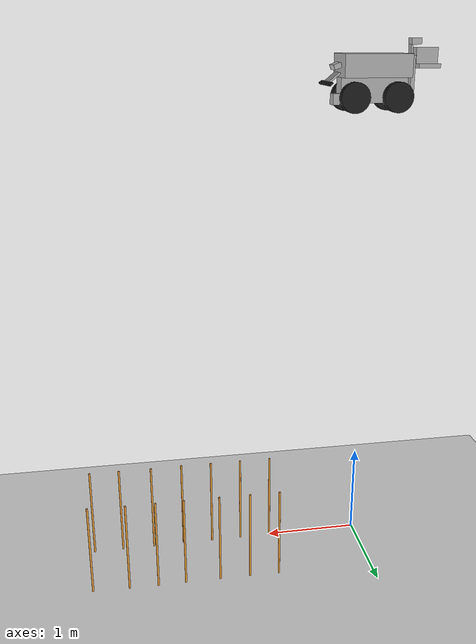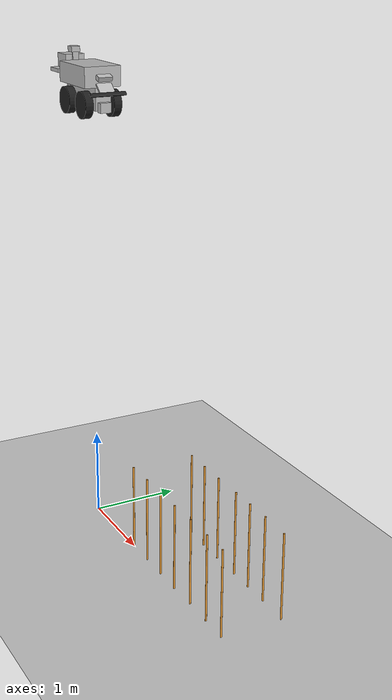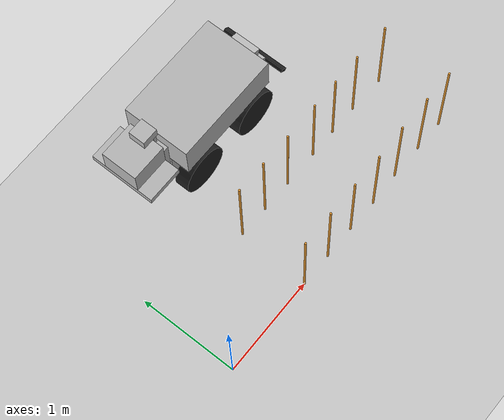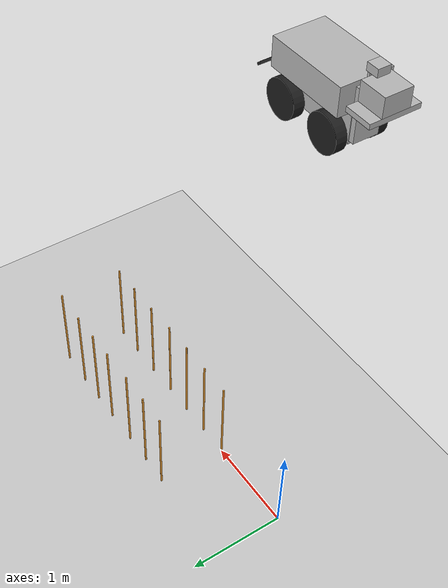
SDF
<sdf version="1.6">
 <world name="default">
  <light name="sun" type="directional">
   <pose>0 0 10 0 -0 0</pose>
   <diffuse>0.8 0.8 0.8 1</diffuse>
   <specular>0.1 0.1 0.1 1</specular>
   <attenuation>
    <range>1000</range>
    <constant>0.9</constant>
    <linear>0.01</linear>
    <quadratic>0.001</quadratic>
   </attenuation>
   <direction>-0.5 0.5 -1</direction>
  </light>
  <model name="ground_plane">
   <static>1</static>
   <link name="link">
    <collision name="collision">
     <geometry><plane><normal>0 0 1</normal><size>100 100</size></plane></geometry>
     <surface><friction><ode><mu>50</mu><mu2>50</mu2></ode></friction></surface>
    </collision>
    <visual name="visual">
     <cast_shadows>0</cast_shadows>
     <geometry><plane><normal>0 0 1</normal><size>100 100</size></plane></geometry>
     <material>
      <script><uri>file://media/materials/scripts/gazebo.material</uri><name>Gazebo/Grey</name></script>
     </material>
    </visual>
   </link>
  </model>
  <gravity>0 0 -9.8</gravity>
  <magnetic_field>6e-06 2.3e-05 -4.2e-05</magnetic_field>
  <atmosphere type="adiabatic"/>
  <physics name="default_physics" default="0" type="ode">
   <max_step_size>0.001</max_step_size>
   <real_time_factor>1</real_time_factor>
   <real_time_update_rate>1000</real_time_update_rate>
  </physics>
  <scene><ambient>0.4 0.4 0.4 1</ambient><background>0.7 0.7 0.7 1</background><shadows>1</shadows></scene>
  <spherical_coordinates>
   <surface_model>EARTH_WGS84</surface_model>
   <latitude_deg>0</latitude_deg>
   <longitude_deg>0</longitude_deg>
   <elevation>0</elevation>
   <heading_deg>0</heading_deg>
  </spherical_coordinates>
  <model name="piquet_rouge">
   <link name="link_0">
    <pose>-0.687579 0.09363 0 0 -0 0</pose>
    <inertial>
     <mass>0.00040478</mass>
     <inertia>
      <ixx>3.373e-05</ixx>
      <ixy>0</ixy>
      <ixz>0</ixz>
      <iyy>3.373e-05</iyy>
      <iyz>0</iyz>
      <izz>2e-08</izz>
     </inertia>
    </inertial>
    <visual name="visual">
     <geometry><cylinder><radius>0.0100434</radius><length>1</length></cylinder></geometry>
     <material>
      <lighting>1</lighting>
      <script><uri>file://media/materials/scripts/gazebo.material</uri><name>Gazebo/Grey</name></script>
      <ambient>1 0 0 1</ambient>
      <diffuse>0.9 0.6 0.2 1</diffuse>
      <specular>0.11 0.01 0.01 1</specular>
      <emissive>0 0 0 1</emissive>
      <shader type="vertex"><normal_map>__default__</normal_map></shader>
     </material>
    </visual>
    <collision name="collision">
     <geometry><cylinder><radius>0.010043</radius><length>1</length></cylinder></geometry>
     <surface>
      <friction>
       <ode><mu>1</mu><mu2>1</mu2><fdir1>0 0 0</fdir1><slip1>0</slip1><slip2>0</slip2></ode>
       <torsional>
        <coefficient>1</coefficient>
        <patch_radius>0</patch_radius>
        <surface_radius>0</surface_radius>
        <use_patch_radius>1</use_patch_radius>
        <ode><slip>0</slip></ode>
       </torsional>
      </friction>
      <bounce><restitution_coefficient>0</restitution_coefficient><threshold>1e+06</threshold></bounce>
      <contact>
       <collide_without_contact>0</collide_without_contact>
       <collide_without_contact_bitmask>1</collide_without_contact_bitmask>
       <collide_bitmask>1</collide_bitmask>
       <ode>
        <soft_cfm>0</soft_cfm>
        <soft_erp>0.2</soft_erp>
        <kp>1e+13</kp>
        <kd>1</kd>
        <max_vel>0.01</max_vel>
        <min_depth>0</min_depth>
       </ode>
       <bullet>
        <split_impulse>1</split_impulse>
        <split_impulse_penetration_threshold>-0.01</split_impulse_penetration_threshold>
        <soft_cfm>0</soft_cfm>
        <soft_erp>0.2</soft_erp>
        <kp>1e+13</kp>
        <kd>1</kd>
       </bullet>
      </contact>
     </surface>
    </collision>
   </link>
   <static>0</static>
   <pose>1.68708 -0.094016 0.499987 -6e-06 7e-06 -0.001095</pose>
  </model>
  <model name="piquet_rouge_clone">
   <link name="link_0">
    <pose>-0.687579 0.09363 0 0 -0 0</pose>
    <inertial>
     <mass>0.00040478</mass>
     <inertia>
      <ixx>3.373e-05</ixx>
      <ixy>0</ixy>
      <ixz>0</ixz>
      <iyy>3.373e-05</iyy>
      <iyz>0</iyz>
      <izz>2e-08</izz>
     </inertia>
    </inertial>
    <visual name="visual">
     <geometry><cylinder><radius>0.0100434</radius><length>1</length></cylinder></geometry>
     <material>
      <lighting>1</lighting>
      <script><uri>file://media/materials/scripts/gazebo.material</uri><name>Gazebo/Grey</name></script>
      <ambient>1 0 0 1</ambient>
      <diffuse>0.9 0.6 0.2 1</diffuse>
      <specular>0.11 0.01 0.01 1</specular>
      <emissive>0 0 0 1</emissive>
      <shader type="vertex"><normal_map>__default__</normal_map></shader>
     </material>
    </visual>
    <collision name="collision">
     <geometry><cylinder><radius>0.010043</radius><length>1</length></cylinder></geometry>
     <surface>
      <friction>
       <ode><mu>1</mu><mu2>1</mu2><fdir1>0 0 0</fdir1><slip1>0</slip1><slip2>0</slip2></ode>
       <torsional>
        <coefficient>1</coefficient>
        <patch_radius>0</patch_radius>
        <surface_radius>0</surface_radius>
        <use_patch_radius>1</use_patch_radius>
        <ode><slip>0</slip></ode>
       </torsional>
      </friction>
      <bounce><restitution_coefficient>0</restitution_coefficient><threshold>1e+06</threshold></bounce>
      <contact>
       <collide_without_contact>0</collide_without_contact>
       <collide_without_contact_bitmask>1</collide_without_contact_bitmask>
       <collide_bitmask>1</collide_bitmask>
       <ode>
        <soft_cfm>0</soft_cfm>
        <soft_erp>0.2</soft_erp>
        <kp>1e+13</kp>
        <kd>1</kd>
        <max_vel>0.01</max_vel>
        <min_depth>0</min_depth>
       </ode>
       <bullet>
        <split_impulse>1</split_impulse>
        <split_impulse_penetration_threshold>-0.01</split_impulse_penetration_threshold>
        <soft_cfm>0</soft_cfm>
        <soft_erp>0.2</soft_erp>
        <kp>1e+13</kp>
        <kd>1</kd>
       </bullet>
      </contact>
     </surface>
    </collision>
   </link>
   <static>0</static>
   <pose>2.72513 0.625258 0.499969 -1e-06 3.2e-05 0.001939</pose>
  </model>
  <model name="piquet_rouge_clone_0">
   <link name="link_0">
    <pose>-0.687579 0.09363 0 0 -0 0</pose>
    <inertial>
     <mass>0.00040478</mass>
     <inertia>
      <ixx>3.373e-05</ixx>
      <ixy>0</ixy>
      <ixz>0</ixz>
      <iyy>3.373e-05</iyy>
      <iyz>0</iyz>
      <izz>2e-08</izz>
     </inertia>
    </inertial>
    <visual name="visual">
     <geometry><cylinder><radius>0.0100434</radius><length>1</length></cylinder></geometry>
     <material>
      <lighting>1</lighting>
      <script><uri>file://media/materials/scripts/gazebo.material</uri><name>Gazebo/Grey</name></script>
      <ambient>1 0 0 1</ambient>
      <diffuse>0.9 0.6 0.2 1</diffuse>
      <specular>0.11 0.01 0.01 1</specular>
      <emissive>0 0 0 1</emissive>
      <shader type="vertex"><normal_map>__default__</normal_map></shader>
     </material>
    </visual>
    <collision name="collision">
     <geometry><cylinder><radius>0.010043</radius><length>1</length></cylinder></geometry>
     <surface>
      <friction>
       <ode><mu>1</mu><mu2>1</mu2><fdir1>0 0 0</fdir1><slip1>0</slip1><slip2>0</slip2></ode>
       <torsional>
        <coefficient>1</coefficient>
        <patch_radius>0</patch_radius>
        <surface_radius>0</surface_radius>
        <use_patch_radius>1</use_patch_radius>
        <ode><slip>0</slip></ode>
       </torsional>
      </friction>
      <bounce><restitution_coefficient>0</restitution_coefficient><threshold>1e+06</threshold></bounce>
      <contact>
       <collide_without_contact>0</collide_without_contact>
       <collide_without_contact_bitmask>1</collide_without_contact_bitmask>
       <collide_bitmask>1</collide_bitmask>
       <ode>
        <soft_cfm>0</soft_cfm>
        <soft_erp>0.2</soft_erp>
        <kp>1e+13</kp>
        <kd>1</kd>
        <max_vel>0.01</max_vel>
        <min_depth>0</min_depth>
       </ode>
       <bullet>
        <split_impulse>1</split_impulse>
        <split_impulse_penetration_threshold>-0.01</split_impulse_penetration_threshold>
        <soft_cfm>0</soft_cfm>
        <soft_erp>0.2</soft_erp>
        <kp>1e+13</kp>
        <kd>1</kd>
       </bullet>
      </contact>
     </surface>
    </collision>
   </link>
   <static>0</static>
   <pose>2.35372 0.623435 0.500004 -4e-06 -7e-06 0.000661</pose>
  </model>
  <model name="piquet_rouge_clone_1">
   <link name="link_0">
    <pose>-0.687579 0.09363 0 0 -0 0</pose>
    <inertial>
     <mass>0.00040478</mass>
     <inertia>
      <ixx>3.373e-05</ixx>
      <ixy>0</ixy>
      <ixz>0</ixz>
      <iyy>3.373e-05</iyy>
      <iyz>0</iyz>
      <izz>2e-08</izz>
     </inertia>
    </inertial>
    <visual name="visual">
     <geometry><cylinder><radius>0.0100434</radius><length>1</length></cylinder></geometry>
     <material>
      <lighting>1</lighting>
      <script><uri>file://media/materials/scripts/gazebo.material</uri><name>Gazebo/Grey</name></script>
      <ambient>1 0 0 1</ambient>
      <diffuse>0.9 0.6 0.2 1</diffuse>
      <specular>0.11 0.01 0.01 1</specular>
      <emissive>0 0 0 1</emissive>
      <shader type="vertex"><normal_map>__default__</normal_map></shader>
     </material>
    </visual>
    <collision name="collision">
     <geometry><cylinder><radius>0.010043</radius><length>1</length></cylinder></geometry>
     <surface>
      <friction>
       <ode><mu>1</mu><mu2>1</mu2><fdir1>0 0 0</fdir1><slip1>0</slip1><slip2>0</slip2></ode>
       <torsional>
        <coefficient>1</coefficient>
        <patch_radius>0</patch_radius>
        <surface_radius>0</surface_radius>
        <use_patch_radius>1</use_patch_radius>
        <ode><slip>0</slip></ode>
       </torsional>
      </friction>
      <bounce><restitution_coefficient>0</restitution_coefficient><threshold>1e+06</threshold></bounce>
      <contact>
       <collide_without_contact>0</collide_without_contact>
       <collide_without_contact_bitmask>1</collide_without_contact_bitmask>
       <collide_bitmask>1</collide_bitmask>
       <ode>
        <soft_cfm>0</soft_cfm>
        <soft_erp>0.2</soft_erp>
        <kp>1e+13</kp>
        <kd>1</kd>
        <max_vel>0.01</max_vel>
        <min_depth>0</min_depth>
       </ode>
       <bullet>
        <split_impulse>1</split_impulse>
        <split_impulse_penetration_threshold>-0.01</split_impulse_penetration_threshold>
        <soft_cfm>0</soft_cfm>
        <soft_erp>0.2</soft_erp>
        <kp>1e+13</kp>
        <kd>1</kd>
       </bullet>
      </contact>
     </surface>
    </collision>
   </link>
   <static>0</static>
   <pose>2.68534 -0.097739 0.499993 -2e-06 1.1e-05 0.001161</pose>
  </model>
  <model name="piquet_rouge_clone_2">
   <link name="link_0">
    <pose>-0.687579 0.09363 0 0 -0 0</pose>
    <inertial>
     <mass>0.00040478</mass>
     <inertia>
      <ixx>3.373e-05</ixx>
      <ixy>0</ixy>
      <ixz>0</ixz>
      <iyy>3.373e-05</iyy>
      <iyz>0</iyz>
      <izz>2e-08</izz>
     </inertia>
    </inertial>
    <visual name="visual">
     <geometry><cylinder><radius>0.0100434</radius><length>1</length></cylinder></geometry>
     <material>
      <lighting>1</lighting>
      <script><uri>file://media/materials/scripts/gazebo.material</uri><name>Gazebo/Grey</name></script>
      <ambient>1 0 0 1</ambient>
      <diffuse>0.9 0.6 0.2 1</diffuse>
      <specular>0.11 0.01 0.01 1</specular>
      <emissive>0 0 0 1</emissive>
      <shader type="vertex"><normal_map>__default__</normal_map></shader>
     </material>
    </visual>
    <collision name="collision">
     <geometry><cylinder><radius>0.010043</radius><length>1</length></cylinder></geometry>
     <surface>
      <friction>
       <ode><mu>1</mu><mu2>1</mu2><fdir1>0 0 0</fdir1><slip1>0</slip1><slip2>0</slip2></ode>
       <torsional>
        <coefficient>1</coefficient>
        <patch_radius>0</patch_radius>
        <surface_radius>0</surface_radius>
        <use_patch_radius>1</use_patch_radius>
        <ode><slip>0</slip></ode>
       </torsional>
      </friction>
      <bounce><restitution_coefficient>0</restitution_coefficient><threshold>1e+06</threshold></bounce>
      <contact>
       <collide_without_contact>0</collide_without_contact>
       <collide_without_contact_bitmask>1</collide_without_contact_bitmask>
       <collide_bitmask>1</collide_bitmask>
       <ode>
        <soft_cfm>0</soft_cfm>
        <soft_erp>0.2</soft_erp>
        <kp>1e+13</kp>
        <kd>1</kd>
        <max_vel>0.01</max_vel>
        <min_depth>0</min_depth>
       </ode>
       <bullet>
        <split_impulse>1</split_impulse>
        <split_impulse_penetration_threshold>-0.01</split_impulse_penetration_threshold>
        <soft_cfm>0</soft_cfm>
        <soft_erp>0.2</soft_erp>
        <kp>1e+13</kp>
        <kd>1</kd>
       </bullet>
      </contact>
     </surface>
    </collision>
   </link>
   <static>0</static>
   <pose>3.68939 -0.09362 0.500025 -8e-06 -5e-05 0.001795</pose>
  </model>
  <model name="piquet_rouge_clone_3">
   <link name="link_0">
    <pose>-0.687579 0.09363 0 0 -0 0</pose>
    <inertial>
     <mass>0.00040478</mass>
     <inertia>
      <ixx>3.373e-05</ixx>
      <ixy>0</ixy>
      <ixz>0</ixz>
      <iyy>3.373e-05</iyy>
      <iyz>0</iyz>
      <izz>2e-08</izz>
     </inertia>
    </inertial>
    <visual name="visual">
     <geometry><cylinder><radius>0.0100434</radius><length>1</length></cylinder></geometry>
     <material>
      <lighting>1</lighting>
      <script><uri>file://media/materials/scripts/gazebo.material</uri><name>Gazebo/Grey</name></script>
      <ambient>1 0 0 1</ambient>
      <diffuse>0.9 0.6 0.2 1</diffuse>
      <specular>0.11 0.01 0.01 1</specular>
      <emissive>0 0 0 1</emissive>
      <shader type="vertex"><normal_map>__default__</normal_map></shader>
     </material>
    </visual>
    <collision name="collision">
     <geometry><cylinder><radius>0.010043</radius><length>1</length></cylinder></geometry>
     <surface>
      <friction>
       <ode><mu>1</mu><mu2>1</mu2><fdir1>0 0 0</fdir1><slip1>0</slip1><slip2>0</slip2></ode>
       <torsional>
        <coefficient>1</coefficient>
        <patch_radius>0</patch_radius>
        <surface_radius>0</surface_radius>
        <use_patch_radius>1</use_patch_radius>
        <ode><slip>0</slip></ode>
       </torsional>
      </friction>
      <bounce><restitution_coefficient>0</restitution_coefficient><threshold>1e+06</threshold></bounce>
      <contact>
       <collide_without_contact>0</collide_without_contact>
       <collide_without_contact_bitmask>1</collide_without_contact_bitmask>
       <collide_bitmask>1</collide_bitmask>
       <ode>
        <soft_cfm>0</soft_cfm>
        <soft_erp>0.2</soft_erp>
        <kp>1e+13</kp>
        <kd>1</kd>
        <max_vel>0.01</max_vel>
        <min_depth>0</min_depth>
       </ode>
       <bullet>
        <split_impulse>1</split_impulse>
        <split_impulse_penetration_threshold>-0.01</split_impulse_penetration_threshold>
        <soft_cfm>0</soft_cfm>
        <soft_erp>0.2</soft_erp>
        <kp>1e+13</kp>
        <kd>1</kd>
       </bullet>
      </contact>
     </surface>
    </collision>
   </link>
   <static>0</static>
   <pose>3.37309 -0.092543 0.500013 -1.1e-05 -3e-05 5e-06</pose>
  </model>
  <model name="piquet_rouge_clone_4">
   <link name="link_0">
    <pose>-0.687579 0.09363 0 0 -0 0</pose>
    <inertial>
     <mass>0.00040478</mass>
     <inertia>
      <ixx>3.373e-05</ixx>
      <ixy>0</ixy>
      <ixz>0</ixz>
      <iyy>3.373e-05</iyy>
      <iyz>0</iyz>
      <izz>2e-08</izz>
     </inertia>
    </inertial>
    <visual name="visual">
     <geometry><cylinder><radius>0.0100434</radius><length>1</length></cylinder></geometry>
     <material>
      <lighting>1</lighting>
      <script><uri>file://media/materials/scripts/gazebo.material</uri><name>Gazebo/Grey</name></script>
      <ambient>1 0 0 1</ambient>
      <diffuse>0.9 0.6 0.2 1</diffuse>
      <specular>0.11 0.01 0.01 1</specular>
      <emissive>0 0 0 1</emissive>
      <shader type="vertex"><normal_map>__default__</normal_map></shader>
     </material>
    </visual>
    <collision name="collision">
     <geometry><cylinder><radius>0.010043</radius><length>1</length></cylinder></geometry>
     <surface>
      <friction>
       <ode><mu>1</mu><mu2>1</mu2><fdir1>0 0 0</fdir1><slip1>0</slip1><slip2>0</slip2></ode>
       <torsional>
        <coefficient>1</coefficient>
        <patch_radius>0</patch_radius>
        <surface_radius>0</surface_radius>
        <use_patch_radius>1</use_patch_radius>
        <ode><slip>0</slip></ode>
       </torsional>
      </friction>
      <bounce><restitution_coefficient>0</restitution_coefficient><threshold>1e+06</threshold></bounce>
      <contact>
       <collide_without_contact>0</collide_without_contact>
       <collide_without_contact_bitmask>1</collide_without_contact_bitmask>
       <collide_bitmask>1</collide_bitmask>
       <ode>
        <soft_cfm>0</soft_cfm>
        <soft_erp>0.2</soft_erp>
        <kp>1e+13</kp>
        <kd>1</kd>
        <max_vel>0.01</max_vel>
        <min_depth>0</min_depth>
       </ode>
       <bullet>
        <split_impulse>1</split_impulse>
        <split_impulse_penetration_threshold>-0.01</split_impulse_penetration_threshold>
        <soft_cfm>0</soft_cfm>
        <soft_erp>0.2</soft_erp>
        <kp>1e+13</kp>
        <kd>1</kd>
       </bullet>
      </contact>
     </surface>
    </collision>
   </link>
   <static>0</static>
   <pose>2.0308 0.627905 0.500006 -7e-06 -9e-06 0.000936</pose>
  </model>
  <model name="piquet_rouge_clone_5">
   <link name="link_0">
    <pose>-0.687579 0.09363 0 0 -0 0</pose>
    <inertial>
     <mass>0.00040478</mass>
     <inertia>
      <ixx>3.373e-05</ixx>
      <ixy>0</ixy>
      <ixz>0</ixz>
      <iyy>3.373e-05</iyy>
      <iyz>0</iyz>
      <izz>2e-08</izz>
     </inertia>
    </inertial>
    <visual name="visual">
     <geometry><cylinder><radius>0.0100434</radius><length>1</length></cylinder></geometry>
     <material>
      <lighting>1</lighting>
      <script><uri>file://media/materials/scripts/gazebo.material</uri><name>Gazebo/Grey</name></script>
      <ambient>1 0 0 1</ambient>
      <diffuse>0.9 0.6 0.2 1</diffuse>
      <specular>0.11 0.01 0.01 1</specular>
      <emissive>0 0 0 1</emissive>
      <shader type="vertex"><normal_map>__default__</normal_map></shader>
     </material>
    </visual>
    <collision name="collision">
     <geometry><cylinder><radius>0.010043</radius><length>1</length></cylinder></geometry>
     <surface>
      <friction>
       <ode><mu>1</mu><mu2>1</mu2><fdir1>0 0 0</fdir1><slip1>0</slip1><slip2>0</slip2></ode>
       <torsional>
        <coefficient>1</coefficient>
        <patch_radius>0</patch_radius>
        <surface_radius>0</surface_radius>
        <use_patch_radius>1</use_patch_radius>
        <ode><slip>0</slip></ode>
       </torsional>
      </friction>
      <bounce><restitution_coefficient>0</restitution_coefficient><threshold>1e+06</threshold></bounce>
      <contact>
       <collide_without_contact>0</collide_without_contact>
       <collide_without_contact_bitmask>1</collide_without_contact_bitmask>
       <collide_bitmask>1</collide_bitmask>
       <ode>
        <soft_cfm>0</soft_cfm>
        <soft_erp>0.2</soft_erp>
        <kp>1e+13</kp>
        <kd>1</kd>
        <max_vel>0.01</max_vel>
        <min_depth>0</min_depth>
       </ode>
       <bullet>
        <split_impulse>1</split_impulse>
        <split_impulse_penetration_threshold>-0.01</split_impulse_penetration_threshold>
        <soft_cfm>0</soft_cfm>
        <soft_erp>0.2</soft_erp>
        <kp>1e+13</kp>
        <kd>1</kd>
       </bullet>
      </contact>
     </surface>
    </collision>
   </link>
   <static>0</static>
   <pose>3.02327 -0.087917 0.499967 -8e-06 3.6e-05 0.001081</pose>
  </model>
  <model name="piquet_rouge_clone_6">
   <link name="link_0">
    <pose>-0.687579 0.09363 0 0 -0 0</pose>
    <inertial>
     <mass>0.00040478</mass>
     <inertia>
      <ixx>3.373e-05</ixx>
      <ixy>0</ixy>
      <ixz>0</ixz>
      <iyy>3.373e-05</iyy>
      <iyz>0</iyz>
      <izz>2e-08</izz>
     </inertia>
    </inertial>
    <visual name="visual">
     <geometry><cylinder><radius>0.0100434</radius><length>1</length></cylinder></geometry>
     <material>
      <lighting>1</lighting>
      <script><uri>file://media/materials/scripts/gazebo.material</uri><name>Gazebo/Grey</name></script>
      <ambient>1 0 0 1</ambient>
      <diffuse>0.9 0.6 0.2 1</diffuse>
      <specular>0.11 0.01 0.01 1</specular>
      <emissive>0 0 0 1</emissive>
      <shader type="vertex"><normal_map>__default__</normal_map></shader>
     </material>
    </visual>
    <collision name="collision">
     <geometry><cylinder><radius>0.010043</radius><length>1</length></cylinder></geometry>
     <surface>
      <friction>
       <ode><mu>1</mu><mu2>1</mu2><fdir1>0 0 0</fdir1><slip1>0</slip1><slip2>0</slip2></ode>
       <torsional>
        <coefficient>1</coefficient>
        <patch_radius>0</patch_radius>
        <surface_radius>0</surface_radius>
        <use_patch_radius>1</use_patch_radius>
        <ode><slip>0</slip></ode>
       </torsional>
      </friction>
      <bounce><restitution_coefficient>0</restitution_coefficient><threshold>1e+06</threshold></bounce>
      <contact>
       <collide_without_contact>0</collide_without_contact>
       <collide_without_contact_bitmask>1</collide_without_contact_bitmask>
       <collide_bitmask>1</collide_bitmask>
       <ode>
        <soft_cfm>0</soft_cfm>
        <soft_erp>0.2</soft_erp>
        <kp>1e+13</kp>
        <kd>1</kd>
        <max_vel>0.01</max_vel>
        <min_depth>0</min_depth>
       </ode>
       <bullet>
        <split_impulse>1</split_impulse>
        <split_impulse_penetration_threshold>-0.01</split_impulse_penetration_threshold>
        <soft_cfm>0</soft_cfm>
        <soft_erp>0.2</soft_erp>
        <kp>1e+13</kp>
        <kd>1</kd>
       </bullet>
      </contact>
     </surface>
    </collision>
   </link>
   <static>0</static>
   <pose>2.02494 -0.093062 0.499984 0 1e-05 -0.00019</pose>
  </model>
  <model name="piquet_rouge_clone_7">
   <link name="link_0">
    <pose>-0.687579 0.09363 0 0 -0 0</pose>
    <inertial>
     <mass>0.00040478</mass>
     <inertia>
      <ixx>3.373e-05</ixx>
      <ixy>0</ixy>
      <ixz>0</ixz>
      <iyy>3.373e-05</iyy>
      <iyz>0</iyz>
      <izz>2e-08</izz>
     </inertia>
    </inertial>
    <visual name="visual">
     <geometry><cylinder><radius>0.0100434</radius><length>1</length></cylinder></geometry>
     <material>
      <lighting>1</lighting>
      <script><uri>file://media/materials/scripts/gazebo.material</uri><name>Gazebo/Grey</name></script>
      <ambient>1 0 0 1</ambient>
      <diffuse>0.9 0.6 0.2 1</diffuse>
      <specular>0.11 0.01 0.01 1</specular>
      <emissive>0 0 0 1</emissive>
      <shader type="vertex"><normal_map>__default__</normal_map></shader>
     </material>
    </visual>
    <collision name="collision">
     <geometry><cylinder><radius>0.010043</radius><length>1</length></cylinder></geometry>
     <surface>
      <friction>
       <ode><mu>1</mu><mu2>1</mu2><fdir1>0 0 0</fdir1><slip1>0</slip1><slip2>0</slip2></ode>
       <torsional>
        <coefficient>1</coefficient>
        <patch_radius>0</patch_radius>
        <surface_radius>0</surface_radius>
        <use_patch_radius>1</use_patch_radius>
        <ode><slip>0</slip></ode>
       </torsional>
      </friction>
      <bounce><restitution_coefficient>0</restitution_coefficient><threshold>1e+06</threshold></bounce>
      <contact>
       <collide_without_contact>0</collide_without_contact>
       <collide_without_contact_bitmask>1</collide_without_contact_bitmask>
       <collide_bitmask>1</collide_bitmask>
       <ode>
        <soft_cfm>0</soft_cfm>
        <soft_erp>0.2</soft_erp>
        <kp>1e+13</kp>
        <kd>1</kd>
        <max_vel>0.01</max_vel>
        <min_depth>0</min_depth>
       </ode>
       <bullet>
        <split_impulse>1</split_impulse>
        <split_impulse_penetration_threshold>-0.01</split_impulse_penetration_threshold>
        <soft_cfm>0</soft_cfm>
        <soft_erp>0.2</soft_erp>
        <kp>1e+13</kp>
        <kd>1</kd>
       </bullet>
      </contact>
     </surface>
    </collision>
   </link>
   <static>0</static>
   <pose>1.7168 0.635046 0.499968 -1e-06 3.2e-05 0.003289</pose>
  </model>
  <model name="piquet_rouge_clone_8">
   <link name="link_0">
    <pose>-0.687579 0.09363 0 0 -0 0</pose>
    <inertial>
     <mass>0.00040478</mass>
     <inertia>
      <ixx>3.373e-05</ixx>
      <ixy>0</ixy>
      <ixz>0</ixz>
      <iyy>3.373e-05</iyy>
      <iyz>0</iyz>
      <izz>2e-08</izz>
     </inertia>
    </inertial>
    <visual name="visual">
     <geometry><cylinder><radius>0.0100434</radius><length>1</length></cylinder></geometry>
     <material>
      <lighting>1</lighting>
      <script><uri>file://media/materials/scripts/gazebo.material</uri><name>Gazebo/Grey</name></script>
      <ambient>1 0 0 1</ambient>
      <diffuse>0.9 0.6 0.2 1</diffuse>
      <specular>0.11 0.01 0.01 1</specular>
      <emissive>0 0 0 1</emissive>
      <shader type="vertex"><normal_map>__default__</normal_map></shader>
     </material>
    </visual>
    <collision name="collision">
     <geometry><cylinder><radius>0.010043</radius><length>1</length></cylinder></geometry>
     <surface>
      <friction>
       <ode><mu>1</mu><mu2>1</mu2><fdir1>0 0 0</fdir1><slip1>0</slip1><slip2>0</slip2></ode>
       <torsional>
        <coefficient>1</coefficient>
        <patch_radius>0</patch_radius>
        <surface_radius>0</surface_radius>
        <use_patch_radius>1</use_patch_radius>
        <ode><slip>0</slip></ode>
       </torsional>
      </friction>
      <bounce><restitution_coefficient>0</restitution_coefficient><threshold>1e+06</threshold></bounce>
      <contact>
       <collide_without_contact>0</collide_without_contact>
       <collide_without_contact_bitmask>1</collide_without_contact_bitmask>
       <collide_bitmask>1</collide_bitmask>
       <ode>
        <soft_cfm>0</soft_cfm>
        <soft_erp>0.2</soft_erp>
        <kp>1e+13</kp>
        <kd>1</kd>
        <max_vel>0.01</max_vel>
        <min_depth>0</min_depth>
       </ode>
       <bullet>
        <split_impulse>1</split_impulse>
        <split_impulse_penetration_threshold>-0.01</split_impulse_penetration_threshold>
        <soft_cfm>0</soft_cfm>
        <soft_erp>0.2</soft_erp>
        <kp>1e+13</kp>
        <kd>1</kd>
       </bullet>
      </contact>
     </surface>
    </collision>
   </link>
   <static>0</static>
   <pose>2.35561 -0.093439 0.499958 -1.5e-05 4.8e-05 0.000487</pose>
  </model>
  <model name="piquet_rouge_clone_clone">
   <link name="link_0">
    <pose>-0.687579 0.09363 0 0 -0 0</pose>
    <inertial>
     <mass>0.00040478</mass>
     <inertia>
      <ixx>3.373e-05</ixx>
      <ixy>0</ixy>
      <ixz>0</ixz>
      <iyy>3.373e-05</iyy>
      <iyz>0</iyz>
      <izz>2e-08</izz>
     </inertia>
    </inertial>
    <visual name="visual">
     <geometry><cylinder><radius>0.0100434</radius><length>1</length></cylinder></geometry>
     <material>
      <lighting>1</lighting>
      <script><uri>file://media/materials/scripts/gazebo.material</uri><name>Gazebo/Grey</name></script>
      <ambient>1 0 0 1</ambient>
      <diffuse>0.9 0.6 0.2 1</diffuse>
      <specular>0.11 0.01 0.01 1</specular>
      <emissive>0 0 0 1</emissive>
      <shader type="vertex"><normal_map>__default__</normal_map></shader>
     </material>
    </visual>
    <collision name="collision">
     <geometry><cylinder><radius>0.010043</radius><length>1</length></cylinder></geometry>
     <surface>
      <friction>
       <ode><mu>1</mu><mu2>1</mu2><fdir1>0 0 0</fdir1><slip1>0</slip1><slip2>0</slip2></ode>
       <torsional>
        <coefficient>1</coefficient>
        <patch_radius>0</patch_radius>
        <surface_radius>0</surface_radius>
        <use_patch_radius>1</use_patch_radius>
        <ode><slip>0</slip></ode>
       </torsional>
      </friction>
      <bounce><restitution_coefficient>0</restitution_coefficient><threshold>1e+06</threshold></bounce>
      <contact>
       <collide_without_contact>0</collide_without_contact>
       <collide_without_contact_bitmask>1</collide_without_contact_bitmask>
       <collide_bitmask>1</collide_bitmask>
       <ode>
        <soft_cfm>0</soft_cfm>
        <soft_erp>0.2</soft_erp>
        <kp>1e+13</kp>
        <kd>1</kd>
        <max_vel>0.01</max_vel>
        <min_depth>0</min_depth>
       </ode>
       <bullet>
        <split_impulse>1</split_impulse>
        <split_impulse_penetration_threshold>-0.01</split_impulse_penetration_threshold>
        <soft_cfm>0</soft_cfm>
        <soft_erp>0.2</soft_erp>
        <kp>1e+13</kp>
        <kd>1</kd>
       </bullet>
      </contact>
     </surface>
    </collision>
   </link>
   <static>0</static>
   <pose>3.0171 0.623457 0.499972 1e-06 2.6e-05 -8.2e-05</pose>
  </model>
  <model name="piquet_rouge_clone_clone_0">
   <link name="link_0">
    <pose>-0.687579 0.09363 0 0 -0 0</pose>
    <inertial>
     <mass>0.00040478</mass>
     <inertia>
      <ixx>3.373e-05</ixx>
      <ixy>0</ixy>
      <ixz>0</ixz>
      <iyy>3.373e-05</iyy>
      <iyz>0</iyz>
      <izz>2e-08</izz>
     </inertia>
    </inertial>
    <visual name="visual">
     <geometry><cylinder><radius>0.0100434</radius><length>1</length></cylinder></geometry>
     <material>
      <lighting>1</lighting>
      <script><uri>file://media/materials/scripts/gazebo.material</uri><name>Gazebo/Grey</name></script>
      <ambient>1 0 0 1</ambient>
      <diffuse>0.9 0.6 0.2 1</diffuse>
      <specular>0.11 0.01 0.01 1</specular>
      <emissive>0 0 0 1</emissive>
      <shader type="vertex"><normal_map>__default__</normal_map></shader>
     </material>
    </visual>
    <collision name="collision">
     <geometry><cylinder><radius>0.010043</radius><length>1</length></cylinder></geometry>
     <surface>
      <friction>
       <ode><mu>1</mu><mu2>1</mu2><fdir1>0 0 0</fdir1><slip1>0</slip1><slip2>0</slip2></ode>
       <torsional>
        <coefficient>1</coefficient>
        <patch_radius>0</patch_radius>
        <surface_radius>0</surface_radius>
        <use_patch_radius>1</use_patch_radius>
        <ode><slip>0</slip></ode>
       </torsional>
      </friction>
      <bounce><restitution_coefficient>0</restitution_coefficient><threshold>1e+06</threshold></bounce>
      <contact>
       <collide_without_contact>0</collide_without_contact>
       <collide_without_contact_bitmask>1</collide_without_contact_bitmask>
       <collide_bitmask>1</collide_bitmask>
       <ode>
        <soft_cfm>0</soft_cfm>
        <soft_erp>0.2</soft_erp>
        <kp>1e+13</kp>
        <kd>1</kd>
        <max_vel>0.01</max_vel>
        <min_depth>0</min_depth>
       </ode>
       <bullet>
        <split_impulse>1</split_impulse>
        <split_impulse_penetration_threshold>-0.01</split_impulse_penetration_threshold>
        <soft_cfm>0</soft_cfm>
        <soft_erp>0.2</soft_erp>
        <kp>1e+13</kp>
        <kd>1</kd>
       </bullet>
      </contact>
     </surface>
    </collision>
   </link>
   <static>0</static>
   <pose>3.32107 0.622961 0.50001 1e-06 -1.5e-05 0.000431</pose>
  </model>
  <model name="piquet_rouge_clone_clone_1">
   <link name="link_0">
    <pose>-0.687579 0.09363 0 0 -0 0</pose>
    <inertial>
     <mass>0.00040478</mass>
     <inertia>
      <ixx>3.373e-05</ixx>
      <ixy>0</ixy>
      <ixz>0</ixz>
      <iyy>3.373e-05</iyy>
      <iyz>0</iyz>
      <izz>2e-08</izz>
     </inertia>
    </inertial>
    <visual name="visual">
     <geometry><cylinder><radius>0.0100434</radius><length>1</length></cylinder></geometry>
     <material>
      <lighting>1</lighting>
      <script><uri>file://media/materials/scripts/gazebo.material</uri><name>Gazebo/Grey</name></script>
      <ambient>1 0 0 1</ambient>
      <diffuse>0.9 0.6 0.2 1</diffuse>
      <specular>0.11 0.01 0.01 1</specular>
      <emissive>0 0 0 1</emissive>
      <shader type="vertex"><normal_map>__default__</normal_map></shader>
     </material>
    </visual>
    <collision name="collision">
     <geometry><cylinder><radius>0.010043</radius><length>1</length></cylinder></geometry>
     <surface>
      <friction>
       <ode><mu>1</mu><mu2>1</mu2><fdir1>0 0 0</fdir1><slip1>0</slip1><slip2>0</slip2></ode>
       <torsional>
        <coefficient>1</coefficient>
        <patch_radius>0</patch_radius>
        <surface_radius>0</surface_radius>
        <use_patch_radius>1</use_patch_radius>
        <ode><slip>0</slip></ode>
       </torsional>
      </friction>
      <bounce><restitution_coefficient>0</restitution_coefficient><threshold>1e+06</threshold></bounce>
      <contact>
       <collide_without_contact>0</collide_without_contact>
       <collide_without_contact_bitmask>1</collide_without_contact_bitmask>
       <collide_bitmask>1</collide_bitmask>
       <ode>
        <soft_cfm>0</soft_cfm>
        <soft_erp>0.2</soft_erp>
        <kp>1e+13</kp>
        <kd>1</kd>
        <max_vel>0.01</max_vel>
        <min_depth>0</min_depth>
       </ode>
       <bullet>
        <split_impulse>1</split_impulse>
        <split_impulse_penetration_threshold>-0.01</split_impulse_penetration_threshold>
        <soft_cfm>0</soft_cfm>
        <soft_erp>0.2</soft_erp>
        <kp>1e+13</kp>
        <kd>1</kd>
       </bullet>
      </contact>
     </surface>
    </collision>
   </link>
   <static>0</static>
   <pose>3.70169 0.608092 0.500012 -0 -1.7e-05 0.001167</pose>
  </model>
  <model name="oz440">
   <link name="footprint">
    <inertial>
     <pose>0.002411 0 0.163075 0 -0 0</pose>
     <mass>106.5</mass>
     <inertia>
      <ixx>2.85319</ixx>
      <ixy>0</ixy>
      <ixz>0.323238</ixz>
      <iyy>6.61146</iyy>
      <iyz>0</iyz>
      <izz>5.28524</izz>
     </inertia>
    </inertial>
    <collision name="footprint_fixed_joint_lump__chassis_bottom_collision">
     <geometry><box><size>0.67454 0.1734 0.243</size></box></geometry>
    </collision>
    <collision name="footprint_fixed_joint_lump__collision_actuator_collision_1">
     <pose>-0.37727 0 0.1215 0 -0 0</pose>
     <geometry><box><size>0.04 0.2 0.4</size></box></geometry>
    </collision>
    <collision name="footprint_fixed_joint_lump__IMU_base_link_collision_2">
     <pose>-0.37727 0 0.3715 0 -0 0</pose>
     <geometry><box><size>0.02 0.07 0.1</size></box></geometry>
    </collision>
    <collision name="footprint_fixed_joint_lump__IMU_link_collision_3">
     <pose>-0.41727 0 0.4515 0 -0 0</pose>
     <geometry><box><size>0.1 0.1 0.06</size></box></geometry>
    </collision>
    <collision name="footprint_fixed_joint_lump__chassis_top_collision_4">
     <pose>0 0 0.2315 0 -0 0</pose>
     <geometry><box><size>0.67454 0.41389 0.22</size></box></geometry>
    </collision>
    <collision name="footprint_fixed_joint_lump__bumper_base_link_collision_5">
     <pose>0.40227 0 0.1215 0 0.698132 0</pose>
     <geometry><box><size>0.13 0.1734 0.02</size></box></geometry>
    </collision>
    <collision name="footprint_fixed_joint_lump__bumper_link_collision_6">
     <pose>0.467384 0 0.066863 0 0.698132 0</pose>
     <geometry><box><size>0.04 0.41 0.02</size></box></geometry>
    </collision>
    <collision name="footprint_fixed_joint_lump__lidar_link_collision_7">
     <pose>0.371545 0 -0.08322 0 -0 0</pose>
     <geometry><box><size>0.06855 0.124 0.106</size></box></geometry>
    </collision>
    <collision name="footprint_fixed_joint_lump__camera_stereo_link_collision_8">
     <pose>0.37477 0 0.22564 0 0.349066 0</pose>
     <geometry><box><size>0.075 0.16 0.05</size></box></geometry>
    </collision>
    <visual name="footprint_fixed_joint_lump__chassis_bottom_visual">
     <geometry><box><size>0.67454 0.1734 0.243</size></box></geometry>
    </visual>
    <visual name="footprint_fixed_joint_lump__actuator_base_link_visual_1">
     <pose>-0.37727 0 0.1215 0 -0 0</pose>
     <geometry><box><size>0.04 0.2 0.4</size></box></geometry>
    </visual>
    <visual name="footprint_fixed_joint_lump__IMU_base_link_visual_2">
     <pose>-0.37727 0 0.3715 0 -0 0</pose>
     <geometry><box><size>0.02 0.07 0.1</size></box></geometry>
    </visual>
    <visual name="footprint_fixed_joint_lump__IMU_link_visual_3">
     <pose>-0.41727 0 0.4515 0 -0 0</pose>
     <geometry><box><size>0.1 0.1 0.06</size></box></geometry>
    </visual>
    <visual name="footprint_fixed_joint_lump__chassis_top_visual_4">
     <pose>0 0 0.2315 0 -0 0</pose>
     <geometry><box><size>0.67454 0.41389 0.22</size></box></geometry>
    </visual>
    <visual name="footprint_fixed_joint_lump__bumper_base_link_visual_5">
     <pose>0.40227 0 0.1215 0 0.698132 0</pose>
     <geometry><box><size>0.13 0.1734 0.02</size></box></geometry>
    </visual>
    <visual name="footprint_fixed_joint_lump__bumper_link_visual_6">
     <pose>0.467384 0 0.066863 0 0.698132 0</pose>
     <geometry><box><size>0.04 0.41 0.02</size></box></geometry>
     <material>
      <script><name>Gazebo/Black</name><uri>file://media/materials/scripts/gazebo.material</uri></script>
     </material>
    </visual>
    <visual name="footprint_fixed_joint_lump__lidar_link_visual_7">
     <pose>0.371545 0 -0.08322 0 -0 0</pose>
     <geometry><box><size>0.06855 0.124 0.106</size></box></geometry>
     <material><script><uri>__default__</uri><name>__default__</name></script></material>
    </visual>
    <visual name="footprint_fixed_joint_lump__camera_stereo_link_visual_8">
     <pose>0.37477 0 0.22564 0 0.349066 0</pose>
     <geometry><box><size>0.075 0.16 0.05</size></box></geometry>
     <material><script><uri>__default__</uri><name>__default__</name></script></material>
    </visual>
    <sensor name="lidar" type="gpu_ray">
     <visualize>1</visualize>
     <update_rate>20</update_rate>
     <ray>
      <scan>
       <horizontal>
        <samples>271</samples>
        <resolution>1</resolution>
        <min_angle>-2.35619</min_angle>
        <max_angle>2.35619</max_angle>
       </horizontal>
      </scan>
      <range><min>0.06</min><max>3.5</max><resolution>0.01</resolution></range>
      <noise><type>gaussian</type><mean>0</mean><stddev>0.01</stddev></noise>
     </ray>
     <plugin name="gazebo_lidar_controller" filename="libgazebo_ros_gpu_laser.so">
      <alwaysOn>true</alwaysOn>
      <topicName>/oz440/laser/scan</topicName>
      <frameName>lidar_link</frameName>
      <robotNamespace>/</robotNamespace>
     </plugin>
     <pose>0.371545 0 -0.08322 0 -0 0</pose>
    </sensor>
    <sensor name="stereo_camera" type="multicamera">
     <update_rate>5.55</update_rate>
     <camera name="left">
      <pose>0 0.05 0 0 -0 0</pose>
      <horizontal_fov>1.63556</horizontal_fov>
      <image><width>376</width><height>240</height><format>R8G8B8</format></image>
      <clip><near>0.02</near><far>300</far></clip>
      <noise><type>gaussian</type><mean>0</mean><stddev>0.007</stddev></noise>
     </camera>
     <camera name="right">
      <pose>0 -0.05 0 0 -0 0</pose>
      <horizontal_fov>1.63556</horizontal_fov>
      <image><width>376</width><height>240</height><format>R8G8B8</format></image>
      <clip><near>0.02</near><far>300</far></clip>
      <noise><type>gaussian</type><mean>0</mean><stddev>0.007</stddev></noise>
     </camera>
     <plugin name="stereo_camera_controller" filename="libgazebo_ros_multicamera.so">
      <alwaysOn>true</alwaysOn>
      <updateRate>0.0</updateRate>
      <cameraName>oz440/camera</cameraName>
      <imageTopicName>image_raw</imageTopicName>
      <cameraInfoTopicName>camera_info</cameraInfoTopicName>
      <frameName>camera_stereo_link</frameName>
      <hackBaseline>0.07</hackBaseline>
      <distortionK1>0.0</distortionK1>
      <distortionK2>0.0</distortionK2>
      <distortionK3>0.0</distortionK3>
      <distortionT1>0.0</distortionT1>
      <distortionT2>0.0</distortionT2>
      <robotNamespace>/</robotNamespace>
     </plugin>
     <pose>0.37477 0 0.22564 0 0.349066 0</pose>
    </sensor>
   </link>
   <link name="back_left_wheel">
    <pose>-0.2175 0.16493 -0.0635 0 -0 0</pose>
    <inertial>
     <pose>0 0 0 -3.14158 1.57079 -1.57078</pose>
     <mass>3</mass>
     <inertia>
      <ixx>0.0179168</ixx>
      <ixy>0</ixy>
      <ixz>0</ixz>
      <iyy>0.0179168</iyy>
      <iyz>0</iyz>
      <izz>0.031974</izz>
     </inertia>
    </inertial>
    <collision name="back_left_wheel_collision">
     <pose>0 0 0 3.14159 1.57079 -1.57079</pose>
     <geometry><cylinder><length>0.08786</length><radius>0.146</radius></cylinder></geometry>
     <surface>
      <contact><ode><kp>1e+07</kp><kd>1</kd></ode></contact>
      <friction><ode><mu>10</mu><mu2>0.2</mu2><fdir1>0 1 0</fdir1></ode></friction>
     </surface>
    </collision>
    <visual name="back_left_wheel_visual">
     <pose>0 0 0 3.14159 1.57079 -1.57079</pose>
     <geometry><cylinder><length>0.08786</length><radius>0.146</radius></cylinder></geometry>
     <material>
      <script><name>Gazebo/Black</name><uri>file://media/materials/scripts/gazebo.material</uri></script>
     </material>
    </visual>
   </link>
   <joint name="back_left_wheel_hinge" type="revolute">
    <child>back_left_wheel</child>
    <parent>footprint</parent>
    <axis>
     <xyz>0 1 0</xyz>
     <limit><lower>-1e+16</lower><upper>1e+16</upper></limit>
     <dynamics><spring_reference>0</spring_reference><spring_stiffness>0</spring_stiffness></dynamics>
     <use_parent_model_frame>1</use_parent_model_frame>
    </axis>
   </joint>
   <link name="back_right_wheel">
    <pose>-0.2175 -0.16493 -0.0635 0 -0 0</pose>
    <inertial>
     <pose>0 0 0 -3.14158 1.57079 -1.57078</pose>
     <mass>3</mass>
     <inertia>
      <ixx>0.0179168</ixx>
      <ixy>0</ixy>
      <ixz>0</ixz>
      <iyy>0.0179168</iyy>
      <iyz>0</iyz>
      <izz>0.031974</izz>
     </inertia>
    </inertial>
    <collision name="back_right_wheel_collision">
     <pose>0 0 0 3.14159 1.57079 -1.57079</pose>
     <geometry><cylinder><length>0.08786</length><radius>0.146</radius></cylinder></geometry>
     <surface>
      <contact><ode><kp>1e+07</kp><kd>1</kd></ode></contact>
      <friction><ode><mu>10</mu><mu2>0.2</mu2><fdir1>0 1 0</fdir1></ode></friction>
     </surface>
    </collision>
    <visual name="back_right_wheel_visual">
     <pose>0 0 0 3.14159 1.57079 -1.57079</pose>
     <geometry><cylinder><length>0.08786</length><radius>0.146</radius></cylinder></geometry>
     <material>
      <script><name>Gazebo/Black</name><uri>file://media/materials/scripts/gazebo.material</uri></script>
     </material>
    </visual>
   </link>
   <joint name="back_right_wheel_hinge" type="revolute">
    <child>back_right_wheel</child>
    <parent>footprint</parent>
    <axis>
     <xyz>0 1 0</xyz>
     <limit><lower>-1e+16</lower><upper>1e+16</upper></limit>
     <dynamics><spring_reference>0</spring_reference><spring_stiffness>0</spring_stiffness></dynamics>
     <use_parent_model_frame>1</use_parent_model_frame>
    </axis>
   </joint>
   <link name="actuator_part1_link">
    <pose>-0.50727 0 0.3215 0 -0 0</pose>
    <inertial>
     <pose>0 0 -0.0475 0 -0 0</pose>
     <mass>2</mass>
     <inertia>
      <ixx>0.0238875</ixx>
      <ixy>0</ixy>
      <ixz>0</ixz>
      <iyy>0.0145875</iyy>
      <iyz>0</iyz>
      <izz>0.010075</izz>
     </inertia>
    </inertial>
    <collision name="actuator_part1_link_fixed_joint_lump__collision_actuator_collision">
     <geometry><box><size>0.22 0.22 0.15</size></box></geometry>
    </collision>
    <collision name="actuator_part1_link_fixed_joint_lump__collision_actuator_collision_1">
     <pose>0 0 -0.095 0 -0 0</pose>
     <geometry><box><size>0.22 0.4 0.04</size></box></geometry>
    </collision>
    <visual name="actuator_part1_link_visual"><geometry><box><size>0.22 0.22 0.15</size></box></geometry></visual>
    <visual name="actuator_part1_link_fixed_joint_lump__actuator_part2_link_visual_1">
     <pose>0 0 -0.095 0 -0 0</pose>
     <geometry><box><size>0.22 0.4 0.04</size></box></geometry>
    </visual>
   </link>
   <joint name="actuator_base_link_to_actuator_part1_joint" type="prismatic">
    <child>actuator_part1_link</child>
    <parent>footprint</parent>
    <axis>
     <xyz>0 0 -1</xyz>
     <limit><lower>0</lower><upper>0.15</upper><effort>1</effort><velocity>0.1</velocity></limit>
     <dynamics><spring_reference>0</spring_reference><spring_stiffness>0</spring_stiffness></dynamics>
     <use_parent_model_frame>1</use_parent_model_frame>
    </axis>
   </joint>
   <link name="front_left_wheel">
    <pose>0.2175 0.16493 -0.0635 0 -0 0</pose>
    <inertial>
     <pose>0 0 0 -3.14158 1.57079 -1.57078</pose>
     <mass>3</mass>
     <inertia>
      <ixx>0.0179168</ixx>
      <ixy>0</ixy>
      <ixz>0</ixz>
      <iyy>0.0179168</iyy>
      <iyz>0</iyz>
      <izz>0.031974</izz>
     </inertia>
    </inertial>
    <collision name="front_left_wheel_collision">
     <pose>0 0 0 3.14159 1.57079 -1.57079</pose>
     <geometry><cylinder><length>0.08786</length><radius>0.146</radius></cylinder></geometry>
     <surface>
      <contact><ode><kp>1e+07</kp><kd>1</kd></ode></contact>
      <friction><ode><mu>10</mu><mu2>0.2</mu2><fdir1>0 1 0</fdir1></ode></friction>
     </surface>
    </collision>
    <visual name="front_left_wheel_visual">
     <pose>0 0 0 3.14159 1.57079 -1.57079</pose>
     <geometry><cylinder><length>0.08786</length><radius>0.146</radius></cylinder></geometry>
     <material>
      <script><name>Gazebo/Black</name><uri>file://media/materials/scripts/gazebo.material</uri></script>
     </material>
    </visual>
   </link>
   <joint name="front_left_wheel_hinge" type="revolute">
    <child>front_left_wheel</child>
    <parent>footprint</parent>
    <axis>
     <xyz>0 1 0</xyz>
     <limit><lower>-1e+16</lower><upper>1e+16</upper></limit>
     <dynamics><spring_reference>0</spring_reference><spring_stiffness>0</spring_stiffness></dynamics>
     <use_parent_model_frame>1</use_parent_model_frame>
    </axis>
   </joint>
   <link name="front_right_wheel">
    <pose>0.2175 -0.16493 -0.0635 0 -0 0</pose>
    <inertial>
     <pose>0 0 0 -3.14158 1.57079 -1.57078</pose>
     <mass>3</mass>
     <inertia>
      <ixx>0.0179168</ixx>
      <ixy>0</ixy>
      <ixz>0</ixz>
      <iyy>0.0179168</iyy>
      <iyz>0</iyz>
      <izz>0.031974</izz>
     </inertia>
    </inertial>
    <collision name="front_right_wheel_collision">
     <pose>0 0 0 3.14159 1.57079 -1.57079</pose>
     <geometry><cylinder><length>0.08786</length><radius>0.146</radius></cylinder></geometry>
     <surface>
      <contact><ode><kp>1e+07</kp><kd>1</kd></ode></contact>
      <friction><ode><mu>10</mu><mu2>0.2</mu2><fdir1>0 1 0</fdir1></ode></friction>
     </surface>
    </collision>
    <visual name="front_right_wheel_visual">
     <pose>0 0 0 3.14159 1.57079 -1.57079</pose>
     <geometry><cylinder><length>0.08786</length><radius>0.146</radius></cylinder></geometry>
     <material>
      <script><name>Gazebo/Black</name><uri>file://media/materials/scripts/gazebo.material</uri></script>
     </material>
    </visual>
   </link>
   <joint name="front_right_wheel_hinge" type="revolute">
    <child>front_right_wheel</child>
    <parent>footprint</parent>
    <axis>
     <xyz>0 1 0</xyz>
     <limit><lower>-1e+16</lower><upper>1e+16</upper></limit>
     <dynamics><spring_reference>0</spring_reference><spring_stiffness>0</spring_stiffness></dynamics>
     <use_parent_model_frame>1</use_parent_model_frame>
    </axis>
   </joint>
   <plugin name="gazebo_ros_control" filename="libgazebo_ros_control.so">
    <robotNamespace>/oz440</robotNamespace>
    <robotSimType>gazebo_ros_control/DefaultRobotHWSim</robotSimType>
   </plugin>
   <plugin name="imu_controller" filename="libhector_gazebo_ros_imu.so">
    <robotNamespace>/oz440/</robotNamespace>
    <updateRate>50.0</updateRate>
    <topicName>imu/data</topicName>
    <accelDrift>0.005 0.005 0.005</accelDrift>
    <accelGaussianNoise>0.05 0.05 0.05</accelGaussianNoise>
    <rateDrift>0.005 0.005 0.005</rateDrift>
    <rateGaussianNoise>0.05 0.05 0.05</rateGaussianNoise>
    <headingDrift>0.005</headingDrift>
    <headingGaussianNoise>0.005</headingGaussianNoise>
    <bodyName>footprint</bodyName>
    <xyzOffset>0.41727 0 -0.4515</xyzOffset>
    <rpyOffset>0 -0 0</rpyOffset>
   </plugin>
   <static>0</static>
   <plugin name="gps_controller" filename="libhector_gazebo_ros_gps.so">
    <updateRate>1</updateRate>
    <robotNamespace>/oz440/</robotNamespace>
    <topicName>navsat/fix</topicName>
    <velocityTopicName>navsat/vel</velocityTopicName>
    <referenceLatitude>49.9</referenceLatitude>
    <referenceLongitude>8.9</referenceLongitude>
    <referenceHeading>0</referenceHeading>
    <referenceAltitude>0</referenceAltitude>
    <drift>0.0001 0.0001 0.0001</drift>
    <bodyName>footprint</bodyName>
    <xyzOffset>0.41727 0 -0.4515</xyzOffset>
    <rpyOffset>0 -0 0</rpyOffset>
   </plugin>
   <pose>0 0 5 0 -0 0</pose>
  </model>
 </world>
</sdf>
